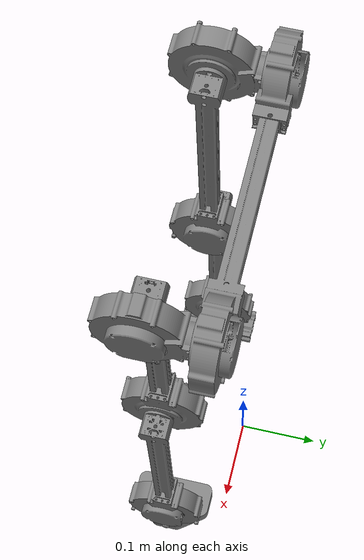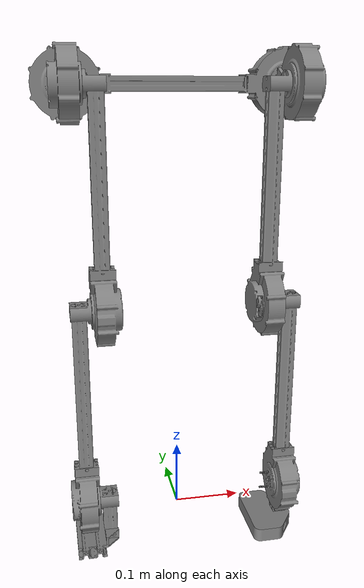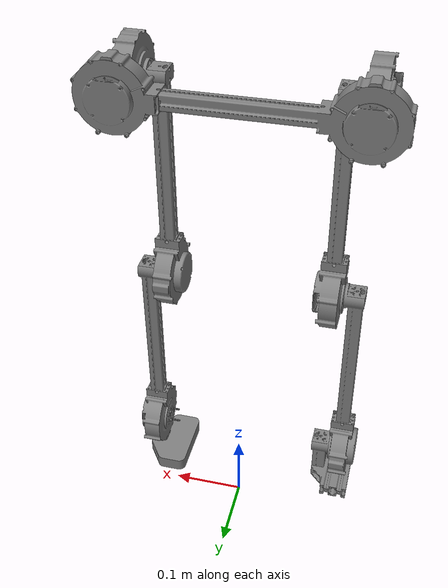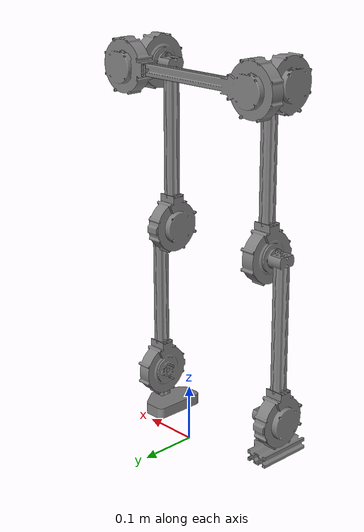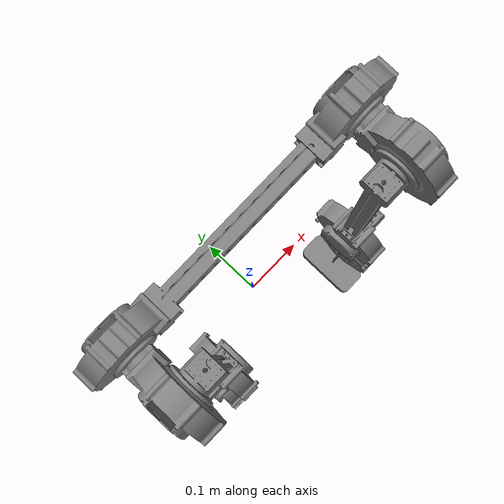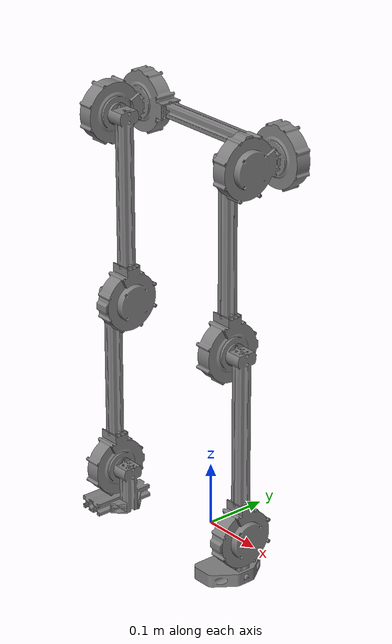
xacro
<?xml version="1.0"?>
<robot xmlns:xacro="http://www.ros.org/wiki/xacro">

    <material name="grey">
        <color rgba="0.5 0.5 0.5 1"/>
    </material>

    <material name="blue">
        <color rgba="0.2 0.2 1 1"/>
    </material>

    <xacro:property name="scale_factor" value="0.001 0.001 0.001"/>
    <xacro:property name="package_name" value="bi_pedal_a1"/>

    <!-- ***************************************** Base ******************************************* -->

    <link name="world"/>

    <link name="base_link">
        <visual>
            <origin xyz="0 0 0"/>
            <geometry>
                <mesh filename="package://${package_name}/meshes/base_link.stl" scale="${scale_factor}"/>
            </geometry>
            <material name="grey"/>
        </visual>
        <collision>
            <origin xyz="0 0 0"/>
            <geometry>
                <mesh filename="package://${package_name}/meshes/base_link.stl" scale="${scale_factor}"/>
            </geometry>
        </collision>
    </link>

    <joint name="base_joint" type="fixed">
        <parent link="world"/>
        <child link="base_link"/>
        <origin xyz="0 0 0.6324" rpy="0 0 0"/>
    </joint>

    <!-- ***************************************** Left Hip *************************************** -->

    <link name="left_hip">
        <visual>
            <origin xyz="0 0 0"/>
            <geometry>
                <mesh filename="package://${package_name}/meshes/left_hip.stl" scale="${scale_factor}"/>
            </geometry>
            <material name="grey"/>
        </visual>
        <collision>
            <origin xyz="0 0 0"/>
            <geometry>
                <mesh filename="package://${package_name}/meshes/left_hip.stl" scale="${scale_factor}"/>
            </geometry>
        </collision>
    </link>

    <joint name="left_hip_joint" type="revolute">
        <parent link="base_link"/>
        <child link="left_hip"/>
        <origin xyz="-0.148 -0.0175 0.01" rpy="${pi/2} 0 0"/>
        <axis xyz="0 0 1"/>
        <limit lower="${-pi/2}" upper="${pi/2}" effort="10" velocity="1"/>
    </joint>

    <!-- ***************************************** Right Hip *************************************** -->

    <link name="right_hip">
        <visual>
            <origin xyz="0 0 0"/>
            <geometry>
                <mesh filename="package://${package_name}/meshes/right_hip.stl" scale="${scale_factor}"/>
            </geometry>
            <material name="grey"/>
        </visual>
        <collision>
            <origin xyz="0 0 0"/>
            <geometry>
                <mesh filename="package://${package_name}/meshes/right_hip.stl" scale="${scale_factor}"/>
            </geometry>
        </collision>
    </link>

    <joint name="right_hip_joint" type="revolute">
        <parent link="base_link"/>
        <child link="right_hip"/>
        <origin xyz="0.148 -0.0175 0.01" rpy="${pi/2} 0 0"/>
        <axis xyz="0 0 1"/>
        <limit lower="${pi/2}" upper="${-pi/2}" effort="10" velocity="1"/>
    </joint>

    <!-- ***************************************** Left thigh ************************************* -->

    <link name="left_thigh">
        <visual>
            <origin xyz="0 0 0"/>
            <geometry>
                <mesh filename="package://${package_name}/meshes/left_thigh.stl" scale="${scale_factor}"/>
            </geometry>
            <material name="grey"/>
        </visual>
        <collision>
            <origin xyz="0 0 0"/>
            <geometry>
                <mesh filename="package://${package_name}/meshes/left_thigh.stl" scale="${scale_factor}"/>
            </geometry>
        </collision>
    </link>

    <joint name="left_thigh_joint" type="revolute">
        <parent link="left_hip"/>
        <child link="left_thigh"/>
        <origin xyz="0.0175 0 0.051" rpy="${-pi/2} 0 0"/>
        <axis xyz="1 0 0"/>
        <limit lower="${-pi/2}" upper="${pi/2}" effort="10" velocity="1"/>
    </joint>

    <!-- ***************************************** right thigh ************************************ -->

    <link name="right_thigh">
        <visual>
            <origin xyz="0 0 0"/>
            <geometry>
                <mesh filename="package://${package_name}/meshes/right_thigh.stl" scale="${scale_factor}"/>
            </geometry>
            <material name="grey"/>
        </visual>
        <collision>
            <origin xyz="0 0 0"/>
            <geometry>
                <mesh filename="package://${package_name}/meshes/right_thigh.stl" scale="${scale_factor}"/>
            </geometry>
        </collision>
    </link>

    <joint name="right_thigh_joint" type="revolute">
        <parent link="right_hip"/>
        <child link="right_thigh"/>
        <origin xyz="-0.0175 0 0.051" rpy="${-pi/2} 0 0"/>
        <axis xyz="1 0 0"/>
        <limit lower="${-pi/2}" upper="${pi/2}" effort="10" velocity="1"/>
    </joint>

    <!-- ***************************************** Left shin ************************************* -->

    <link name="left_shin">
        <visual>
            <origin xyz="0 0 0"/>
            <geometry>
                <mesh filename="package://${package_name}/meshes/left_shin.stl" scale="${scale_factor}"/>
            </geometry>
            <material name="grey"/>
        </visual>
        <collision>
            <origin xyz="0 0 0"/>
            <geometry>
                <mesh filename="package://${package_name}/meshes/left_shin.stl" scale="${scale_factor}"/>
            </geometry>
        </collision>
    </link>

    <joint name="left_shin_joint" type="revolute">
        <parent link="left_thigh"/>
        <child link="left_shin"/>
        <origin xyz="0 0 -0.2885" rpy="0 0 0"/>
        <axis xyz="1 0 0"/>
        <limit lower="${-pi/2}" upper="${pi/2}" effort="10" velocity="1"/>
    </joint>

    <!-- ***************************************** right shin ************************************* -->

    <link name="right_shin">
        <visual>
            <origin xyz="0 0 0"/>
            <geometry>
                <mesh filename="package://${package_name}/meshes/right_shin.stl" scale="${scale_factor}"/>
            </geometry>
            <material name="grey"/>
        </visual>
        <collision>
            <origin xyz="0 0 0"/>
            <geometry>
                <mesh filename="package://${package_name}/meshes/right_shin.stl" scale="${scale_factor}"/>
            </geometry>
        </collision>
    </link>

    <joint name="right_shin_joint" type="revolute">
        <parent link="right_thigh"/>
        <child link="right_shin"/>
        <origin xyz="0 0 -0.2885" rpy="0 0 0"/>
        <axis xyz="1 0 0"/>
        <limit lower="${-pi/2}" upper="${pi/2}" effort="10" velocity="1"/>
    </joint>

    <!-- ***************************************** Left foot ************************************* -->

    <link name="left_foot">
        <visual>
            <origin xyz="0 0 0"/>
            <geometry>
                <mesh filename="package://${package_name}/meshes/left_foot.stl" scale="${scale_factor}"/>
            </geometry>
            <material name="grey"/>
        </visual>
        <collision>
            <origin xyz="0 0 0"/>
            <geometry>
                <mesh filename="package://${package_name}/meshes/left_foot.stl" scale="${scale_factor}"/>
            </geometry>
        </collision>
    </link>

    <joint name="left_foot_joint" type="revolute">
        <parent link="left_shin"/>
        <child link="left_foot"/>
        <origin xyz="0 0 -0.2885" rpy="0 0 0"/>
        <axis xyz="1 0 0"/>
        <limit lower="${-pi/2}" upper="${pi/2}" effort="10" velocity="1"/>
    </joint>

    <!-- ***************************************** Right foot ************************************* -->

    <link name="right_foot">
        <visual>
            <origin xyz="0 0 0"/>
            <geometry>
                <mesh filename="package://${package_name}/meshes/right_foot.stl" scale="${scale_factor}"/>
            </geometry>
            <material name="grey"/>
        </visual>
        <collision>
            <origin xyz="0 0 0"/>
            <geometry>
                <mesh filename="package://${package_name}/meshes/right_foot.stl" scale="${scale_factor}"/>
            </geometry>
        </collision>
    </link>

    <joint name="right_foot_joint" type="revolute">
        <parent link="right_shin"/>
        <child link="right_foot"/>
        <origin xyz="0 0 -0.2885" rpy="0 0 0"/>
        <axis xyz="1 0 0"/>
        <limit lower="${-pi/2}" upper="${pi/2}" effort="10" velocity="1"/>
    </joint>

</robot>
